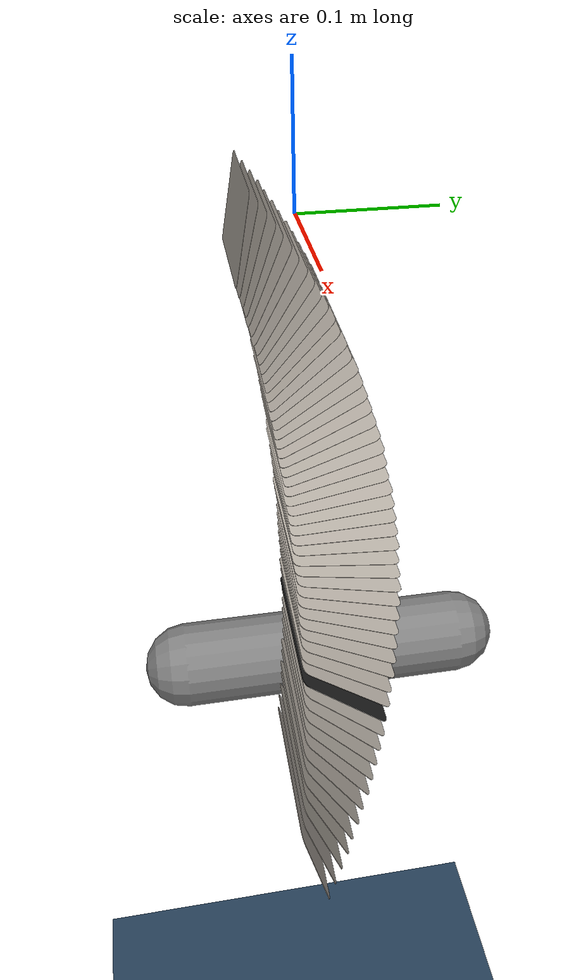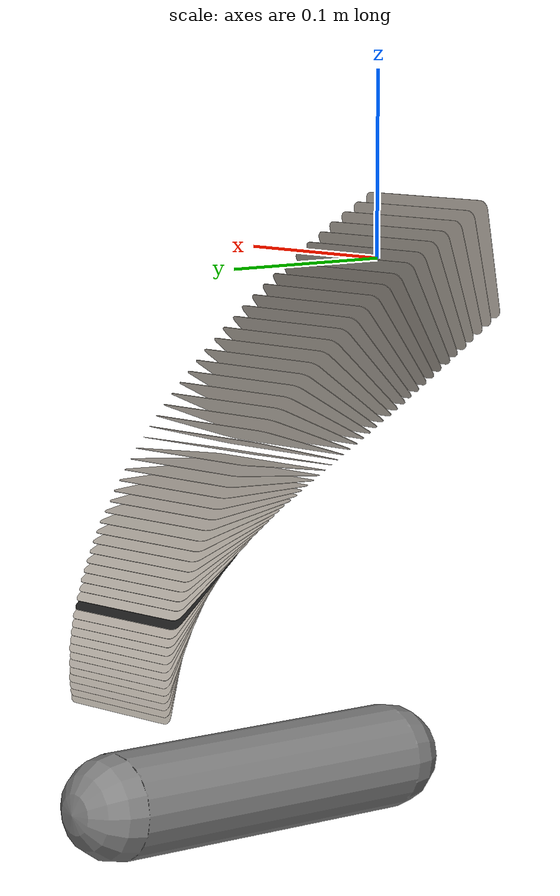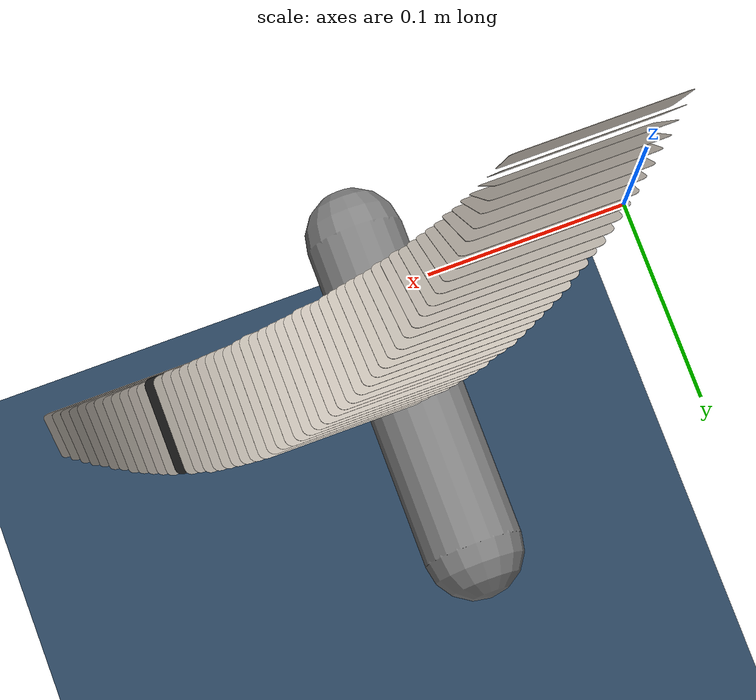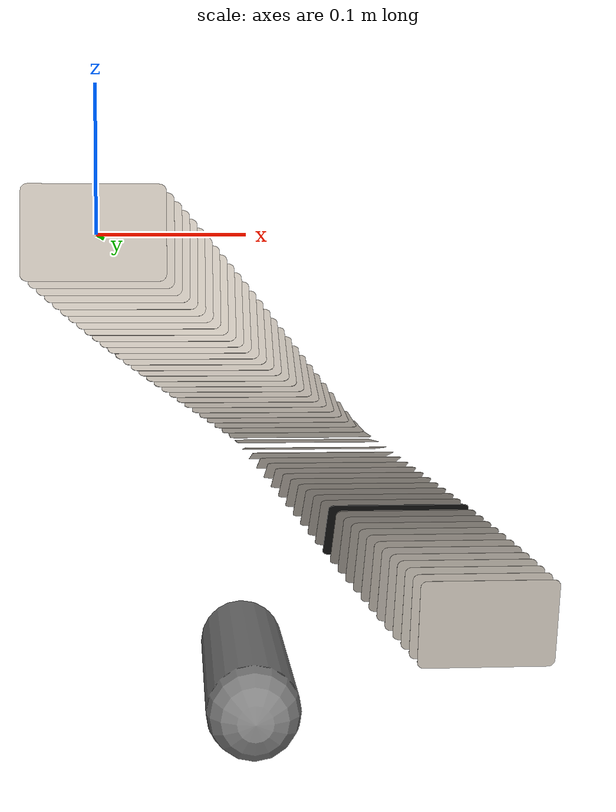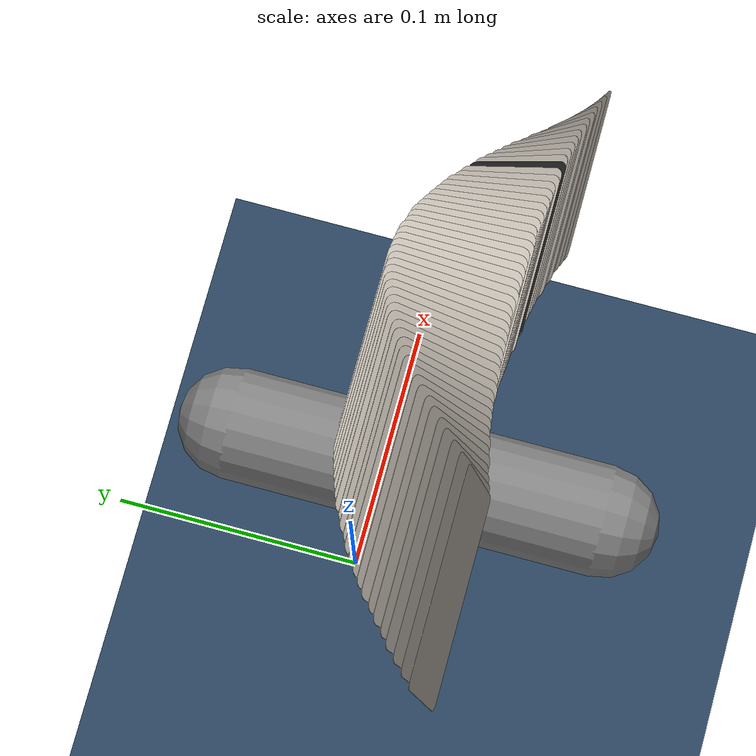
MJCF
<mujoco>
  <compiler assetdir="assets"/>

  <size memory="5M"/>

  <statistic extent="0.5" center="0 -.5 0"/>

  <visual>
    <map znear="0.1" zfar="10"/>
    <quality shadowsize="8192"/>
  </visual>

  <option density="1.225" viscosity="1.8e-5" timestep="1e-3" integrator="implicitfast"/>

  <asset>
    <texture name="grid" type="2d" builtin="checker" rgb1=".1 .2 .3" rgb2=".2 .3 .4" width="100" height="100"/>
    <material name="grid" texture="grid" texrepeat="8 8" texuniform="true" reflectance=".2"/>

    <mesh file="card.obj"/>

    <texture type="2d" file="2_of_clubs.png"/>
    <material name="2_of_clubs" texture="2_of_clubs"/>

    <texture type="2d" file="2_of_diamonds.png"/>
    <material name="2_of_diamonds" texture="2_of_diamonds"/>

    <texture type="2d" file="2_of_hearts.png"/>
    <material name="2_of_hearts" texture="2_of_hearts"/>

    <texture type="2d" file="2_of_spades.png"/>
    <material name="2_of_spades" texture="2_of_spades"/>

    <texture type="2d" file="3_of_clubs.png"/>
    <material name="3_of_clubs" texture="3_of_clubs"/>

    <texture type="2d" file="3_of_diamonds.png"/>
    <material name="3_of_diamonds" texture="3_of_diamonds"/>

    <texture type="2d" file="3_of_hearts.png"/>
    <material name="3_of_hearts" texture="3_of_hearts"/>

    <texture type="2d" file="3_of_spades.png"/>
    <material name="3_of_spades" texture="3_of_spades"/>

    <texture type="2d" file="4_of_clubs.png"/>
    <material name="4_of_clubs" texture="4_of_clubs"/>

    <texture type="2d" file="4_of_diamonds.png"/>
    <material name="4_of_diamonds" texture="4_of_diamonds"/>

    <texture type="2d" file="4_of_hearts.png"/>
    <material name="4_of_hearts" texture="4_of_hearts"/>

    <texture type="2d" file="4_of_spades.png"/>
    <material name="4_of_spades" texture="4_of_spades"/>

    <texture type="2d" file="5_of_clubs.png"/>
    <material name="5_of_clubs" texture="5_of_clubs"/>

    <texture type="2d" file="5_of_diamonds.png"/>
    <material name="5_of_diamonds" texture="5_of_diamonds"/>

    <texture type="2d" file="5_of_hearts.png"/>
    <material name="5_of_hearts" texture="5_of_hearts"/>

    <texture type="2d" file="5_of_spades.png"/>
    <material name="5_of_spades" texture="5_of_spades"/>

    <texture type="2d" file="6_of_clubs.png"/>
    <material name="6_of_clubs" texture="6_of_clubs"/>

    <texture type="2d" file="6_of_diamonds.png"/>
    <material name="6_of_diamonds" texture="6_of_diamonds"/>

    <texture type="2d" file="6_of_hearts.png"/>
    <material name="6_of_hearts" texture="6_of_hearts"/>

    <texture type="2d" file="6_of_spades.png"/>
    <material name="6_of_spades" texture="6_of_spades"/>

    <texture type="2d" file="7_of_clubs.png"/>
    <material name="7_of_clubs" texture="7_of_clubs"/>

    <texture type="2d" file="7_of_diamonds.png"/>
    <material name="7_of_diamonds" texture="7_of_diamonds"/>

    <texture type="2d" file="7_of_hearts.png"/>
    <material name="7_of_hearts" texture="7_of_hearts"/>

    <texture type="2d" file="7_of_spades.png"/>
    <material name="7_of_spades" texture="7_of_spades"/>

    <texture type="2d" file="8_of_clubs.png"/>
    <material name="8_of_clubs" texture="8_of_clubs"/>

    <texture type="2d" file="8_of_diamonds.png"/>
    <material name="8_of_diamonds" texture="8_of_diamonds"/>

    <texture type="2d" file="8_of_hearts.png"/>
    <material name="8_of_hearts" texture="8_of_hearts"/>

    <texture type="2d" file="8_of_spades.png"/>
    <material name="8_of_spades" texture="8_of_spades"/>

    <texture type="2d" file="9_of_clubs.png"/>
    <material name="9_of_clubs" texture="9_of_clubs"/>

    <texture type="2d" file="9_of_diamonds.png"/>
    <material name="9_of_diamonds" texture="9_of_diamonds"/>

    <texture type="2d" file="9_of_hearts.png"/>
    <material name="9_of_hearts" texture="9_of_hearts"/>

    <texture type="2d" file="9_of_spades.png"/>
    <material name="9_of_spades" texture="9_of_spades"/>

    <texture type="2d" file="10_of_clubs.png"/>
    <material name="10_of_clubs" texture="10_of_clubs"/>

    <texture type="2d" file="10_of_diamonds.png"/>
    <material name="10_of_diamonds" texture="10_of_diamonds"/>

    <texture type="2d" file="10_of_hearts.png"/>
    <material name="10_of_hearts" texture="10_of_hearts"/>

    <texture type="2d" file="10_of_spades.png"/>
    <material name="10_of_spades" texture="10_of_spades"/>

    <texture type="2d" file="ace_of_clubs.png"/>
    <material name="ace_of_clubs" texture="ace_of_clubs"/>

    <texture type="2d" file="ace_of_diamonds.png"/>
    <material name="ace_of_diamonds" texture="ace_of_diamonds"/>

    <texture type="2d" file="ace_of_hearts.png"/>
    <material name="ace_of_hearts" texture="ace_of_hearts"/>

    <texture type="2d" file="ace_of_spades.png"/>
    <material name="ace_of_spades" texture="ace_of_spades"/>

    <texture type="2d" file="black_joker.png"/>
    <material name="black_joker" texture="black_joker"/>

    <texture type="2d" file="jack_of_clubs.png"/>
    <material name="jack_of_clubs" texture="jack_of_clubs"/>

    <texture type="2d" file="jack_of_diamonds.png"/>
    <material name="jack_of_diamonds" texture="jack_of_diamonds"/>

    <texture type="2d" file="jack_of_hearts.png"/>
    <material name="jack_of_hearts" texture="jack_of_hearts"/>

    <texture type="2d" file="jack_of_spades.png"/>
    <material name="jack_of_spades" texture="jack_of_spades"/>

    <texture type="2d" file="king_of_clubs.png"/>
    <material name="king_of_clubs" texture="king_of_clubs"/>

    <texture type="2d" file="king_of_diamonds.png"/>
    <material name="king_of_diamonds" texture="king_of_diamonds"/>

    <texture type="2d" file="king_of_hearts.png"/>
    <material name="king_of_hearts" texture="king_of_hearts"/>

    <texture type="2d" file="king_of_spades.png"/>
    <material name="king_of_spades" texture="king_of_spades"/>

    <texture type="2d" file="queen_of_clubs.png"/>
    <material name="queen_of_clubs" texture="queen_of_clubs"/>

    <texture type="2d" file="queen_of_diamonds.png"/>
    <material name="queen_of_diamonds" texture="queen_of_diamonds"/>

    <texture type="2d" file="queen_of_hearts.png"/>
    <material name="queen_of_hearts" texture="queen_of_hearts"/>

    <texture type="2d" file="queen_of_spades.png"/>
    <material name="queen_of_spades" texture="queen_of_spades"/>
  </asset>

  <default>
    <geom solref=".5e-4" solimp="0.9 0.99 1e-4" fluidcoef="0.5 0.25 0.5 2.0 1.0"/>
    <default class="card">
      <geom type="mesh" mesh="card" mass="1.84e-4" fluidshape="ellipsoid" contype="0" conaffinity="0"/>
    </default>
    <default class="collision">
      <geom type="box" mass="0" size="0.047 0.032 .00035" group="3" friction=".1"/>
    </default>
  </default>

  <worldbody>
    <light cutoff="30" pos="0 1 1" dir="0 -1 -2"/>
    <light cutoff="30" pos="0 -1 1" dir="0 1 -2"/>
    <camera name="cinematic" pos="0.119 -0.507 0.239" xyaxes="1 0 0 0 0.608 0.794"  mode="trackcom" fovy="40"/>

    <geom type="plane" size="5 5 .01" pos="0 0 -1" material="grid"/>
    <geom type="capsule" size="0.03" fromto=".1 -.1 -.3 .1 .1 -.3"/>

    <body pos="0.000 -0.040 -0.000" euler="-100 180 0">
      <freejoint/>
      <geom class="card" material="2_of_clubs"/>
      <geom class="collision"/>
    </body>

    <body pos="0.005 -0.037 -0.005" euler="-103 180 0">
      <freejoint/>
      <geom class="card" material="2_of_diamonds"/>
      <geom class="collision"/>
    </body>

    <body pos="0.010 -0.034 -0.010" euler="-106 180 0">
      <freejoint/>
      <geom class="card" material="2_of_hearts"/>
      <geom class="collision"/>
    </body>

    <body pos="0.015 -0.031 -0.015" euler="-109 180 0">
      <freejoint/>
      <geom class="card" material="2_of_spades"/>
      <geom class="collision"/>
    </body>

    <body pos="0.020 -0.029 -0.020" euler="-112 180 0">
      <freejoint/>
      <geom class="card" material="3_of_clubs"/>
      <geom class="collision"/>
    </body>

    <body pos="0.025 -0.026 -0.025" euler="-115 180 0">
      <freejoint/>
      <geom class="card" material="3_of_diamonds"/>
      <geom class="collision"/>
    </body>

    <body pos="0.030 -0.024 -0.030" euler="-118 180 0">
      <freejoint/>
      <geom class="card" material="3_of_hearts"/>
      <geom class="collision"/>
    </body>

    <body pos="0.035 -0.021 -0.035" euler="-121 180 0">
      <freejoint/>
      <geom class="card" material="3_of_spades"/>
      <geom class="collision"/>
    </body>

    <body pos="0.040 -0.019 -0.040" euler="-124 180 0">
      <freejoint/>
      <geom class="card" material="4_of_clubs"/>
      <geom class="collision"/>
    </body>

    <body pos="0.045 -0.017 -0.045" euler="-127 180 0">
      <freejoint/>
      <geom class="card" material="4_of_diamonds"/>
      <geom class="collision"/>
    </body>

    <body pos="0.050 -0.015 -0.050" euler="-130 180 0">
      <freejoint/>
      <geom class="card" material="4_of_hearts"/>
      <geom class="collision"/>
    </body>

    <body pos="0.055 -0.013 -0.055" euler="-133 180 0">
      <freejoint/>
      <geom class="card" material="4_of_spades"/>
      <geom class="collision"/>
    </body>

    <body pos="0.060 -0.012 -0.060" euler="-136 180 0">
      <freejoint/>
      <geom class="card" material="5_of_clubs"/>
      <geom class="collision"/>
    </body>

    <body pos="0.065 -0.010 -0.065" euler="-139 180 0">
      <freejoint/>
      <geom class="card" material="5_of_diamonds"/>
      <geom class="collision"/>
    </body>

    <body pos="0.070 -0.009 -0.070" euler="-142 180 0">
      <freejoint/>
      <geom class="card" material="5_of_hearts"/>
      <geom class="collision"/>
    </body>

    <body pos="0.075 -0.007 -0.075" euler="-145 180 0">
      <freejoint/>
      <geom class="card" material="5_of_spades"/>
      <geom class="collision"/>
    </body>

    <body pos="0.080 -0.006 -0.080" euler="-148 180 0">
      <freejoint/>
      <geom class="card" material="6_of_clubs"/>
      <geom class="collision"/>
    </body>

    <body pos="0.085 -0.005 -0.085" euler="-151 180 0">
      <freejoint/>
      <geom class="card" material="6_of_diamonds"/>
      <geom class="collision"/>
    </body>

    <body pos="0.090 -0.004 -0.090" euler="-154 180 0">
      <freejoint/>
      <geom class="card" material="6_of_hearts"/>
      <geom class="collision"/>
    </body>

    <body pos="0.095 -0.003 -0.095" euler="-157 180 0">
      <freejoint/>
      <geom class="card" material="6_of_spades"/>
      <geom class="collision"/>
    </body>

    <body pos="0.100 -0.002 -0.100" euler="-160 180 0">
      <freejoint/>
      <geom class="card" material="7_of_clubs"/>
      <geom class="collision"/>
    </body>

    <body pos="0.105 -0.001 -0.105" euler="-163 180 0">
      <freejoint/>
      <geom class="card" material="7_of_diamonds"/>
      <geom class="collision"/>
    </body>

    <body pos="0.110 -0.001 -0.110" euler="-166 180 0">
      <freejoint/>
      <geom class="card" material="7_of_hearts"/>
      <geom class="collision"/>
    </body>

    <body pos="0.115 -0.001 -0.115" euler="-169 180 0">
      <freejoint/>
      <geom class="card" material="7_of_spades"/>
      <geom class="collision"/>
    </body>

    <body pos="0.120 -0.000 -0.120" euler="-172 180 0">
      <freejoint/>
      <geom class="card" material="8_of_clubs"/>
      <geom class="collision"/>
    </body>

    <body pos="0.125 -0.000 -0.125" euler="-175 180 0">
      <freejoint/>
      <geom class="card" material="8_of_diamonds"/>
      <geom class="collision"/>
    </body>

    <body pos="0.130 -0.000 -0.130" euler="-178 180 0">
      <freejoint/>
      <geom class="card" material="8_of_hearts"/>
      <geom class="collision"/>
    </body>

    <body pos="0.135 -0.000 -0.135" euler="-181 180 0">
      <freejoint/>
      <geom class="card" material="8_of_spades"/>
      <geom class="collision"/>
    </body>

    <body pos="0.140 -0.000 -0.140" euler="-184 180 0">
      <freejoint/>
      <geom class="card" material="9_of_clubs"/>
      <geom class="collision"/>
    </body>

    <body pos="0.145 -0.001 -0.145" euler="-187 180 0">
      <freejoint/>
      <geom class="card" material="9_of_diamonds"/>
      <geom class="collision"/>
    </body>

    <body pos="0.150 -0.001 -0.150" euler="-190 180 0">
      <freejoint/>
      <geom class="card" material="9_of_hearts"/>
      <geom class="collision"/>
    </body>

    <body pos="0.155 -0.001 -0.155" euler="-193 180 0">
      <freejoint/>
      <geom class="card" material="9_of_spades"/>
      <geom class="collision"/>
    </body>

    <body pos="0.160 -0.002 -0.160" euler="-196 180 0">
      <freejoint/>
      <geom class="card" material="10_of_clubs"/>
      <geom class="collision"/>
    </body>

    <body pos="0.165 -0.003 -0.165" euler="-199 180 0">
      <freejoint/>
      <geom class="card" material="10_of_diamonds"/>
      <geom class="collision"/>
    </body>

    <body pos="0.170 -0.004 -0.170" euler="-202 180 0">
      <freejoint/>
      <geom class="card" material="10_of_hearts"/>
      <geom class="collision"/>
    </body>

    <body pos="0.175 -0.005 -0.175" euler="-205 180 0">
      <freejoint/>
      <geom class="card" material="10_of_spades"/>
      <geom class="collision"/>
    </body>

    <body pos="0.180 -0.006 -0.180" euler="-208 180 0">
      <freejoint/>
      <geom class="card" material="ace_of_clubs"/>
      <geom class="collision"/>
    </body>

    <body pos="0.185 -0.007 -0.185" euler="-211 180 0">
      <freejoint/>
      <geom class="card" material="ace_of_diamonds"/>
      <geom class="collision"/>
    </body>

    <body pos="0.190 -0.009 -0.190" euler="-214 180 0">
      <freejoint/>
      <geom class="card" material="ace_of_hearts"/>
      <geom class="collision"/>
    </body>

    <body pos="0.195 -0.010 -0.195" euler="-217 180 0">
      <freejoint/>
      <geom class="card" material="ace_of_spades"/>
      <geom class="collision"/>
    </body>

    <body pos="0.200 -0.012 -0.200" euler="-220 180 0">
      <freejoint/>
      <geom class="card" material="black_joker"/>
      <geom class="collision"/>
    </body>

    <body pos="0.205 -0.013 -0.205" euler="-223 180 0">
      <freejoint/>
      <geom class="card" material="jack_of_clubs"/>
      <geom class="collision"/>
    </body>

    <body pos="0.210 -0.015 -0.210" euler="-226 180 0">
      <freejoint/>
      <geom class="card" material="jack_of_diamonds"/>
      <geom class="collision"/>
    </body>

    <body pos="0.215 -0.017 -0.215" euler="-229 180 0">
      <freejoint/>
      <geom class="card" material="jack_of_hearts"/>
      <geom class="collision"/>
    </body>

    <body pos="0.220 -0.019 -0.220" euler="-232 180 0">
      <freejoint/>
      <geom class="card" material="jack_of_spades"/>
      <geom class="collision"/>
    </body>

    <body pos="0.225 -0.021 -0.225" euler="-235 180 0">
      <freejoint/>
      <geom class="card" material="king_of_clubs"/>
      <geom class="collision"/>
    </body>

    <body pos="0.230 -0.024 -0.230" euler="-238 180 0">
      <freejoint/>
      <geom class="card" material="king_of_diamonds"/>
      <geom class="collision"/>
    </body>

    <body pos="0.235 -0.026 -0.235" euler="-241 180 0">
      <freejoint/>
      <geom class="card" material="king_of_hearts"/>
      <geom class="collision"/>
    </body>

    <body pos="0.240 -0.029 -0.240" euler="-244 180 0">
      <freejoint/>
      <geom class="card" material="king_of_spades"/>
      <geom class="collision"/>
    </body>

    <body pos="0.245 -0.031 -0.245" euler="-247 180 0">
      <freejoint/>
      <geom class="card" material="queen_of_clubs"/>
      <geom class="collision"/>
    </body>

    <body pos="0.250 -0.034 -0.250" euler="-250 180 0">
      <freejoint/>
      <geom class="card" material="queen_of_diamonds"/>
      <geom class="collision"/>
    </body>

    <body pos="0.255 -0.037 -0.255" euler="-253 180 0">
      <freejoint/>
      <geom class="card" material="queen_of_hearts"/>
      <geom class="collision"/>
    </body>

    <body pos="0.260 -0.040 -0.260" euler="-256 180 0">
      <freejoint/>
      <geom class="card" material="queen_of_spades"/>
      <geom class="collision"/>
    </body>

  </worldbody>
</mujoco>
